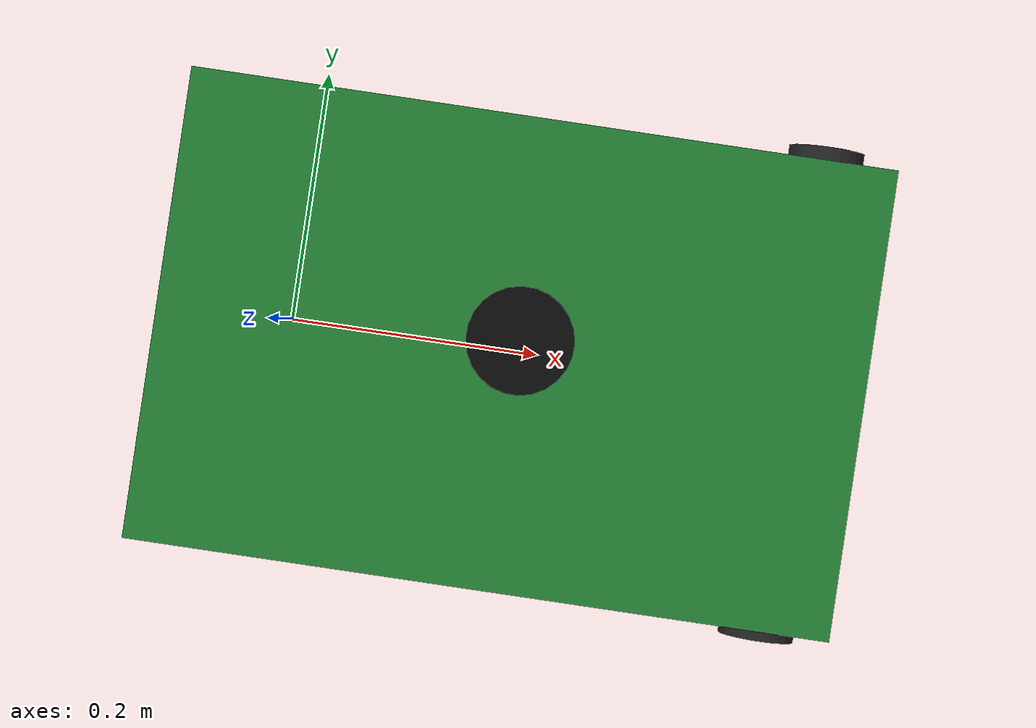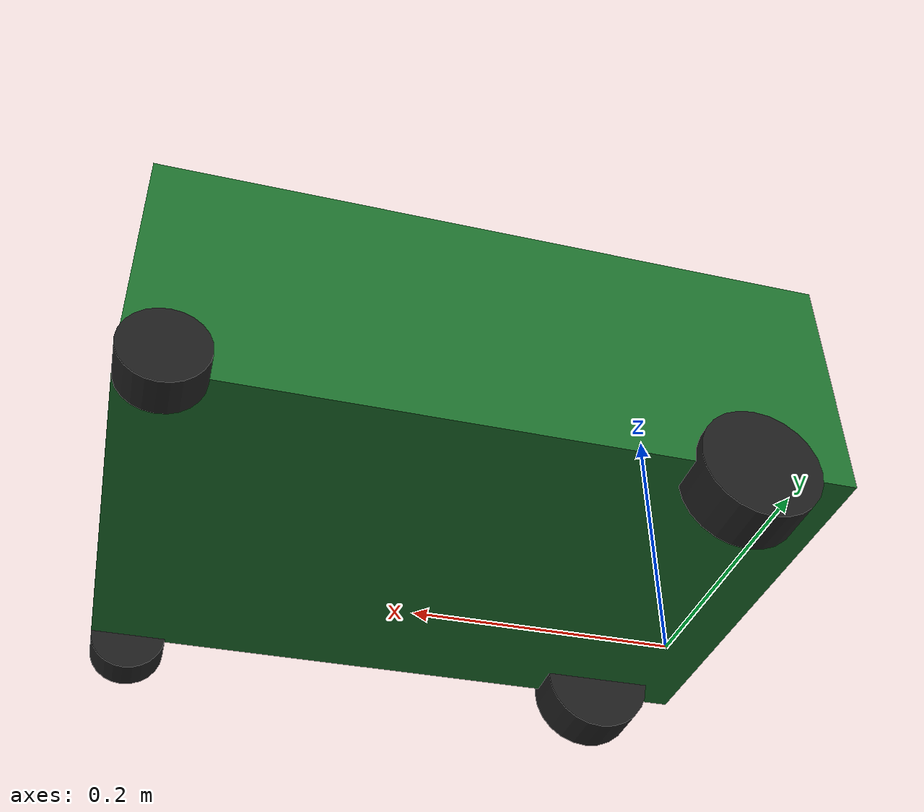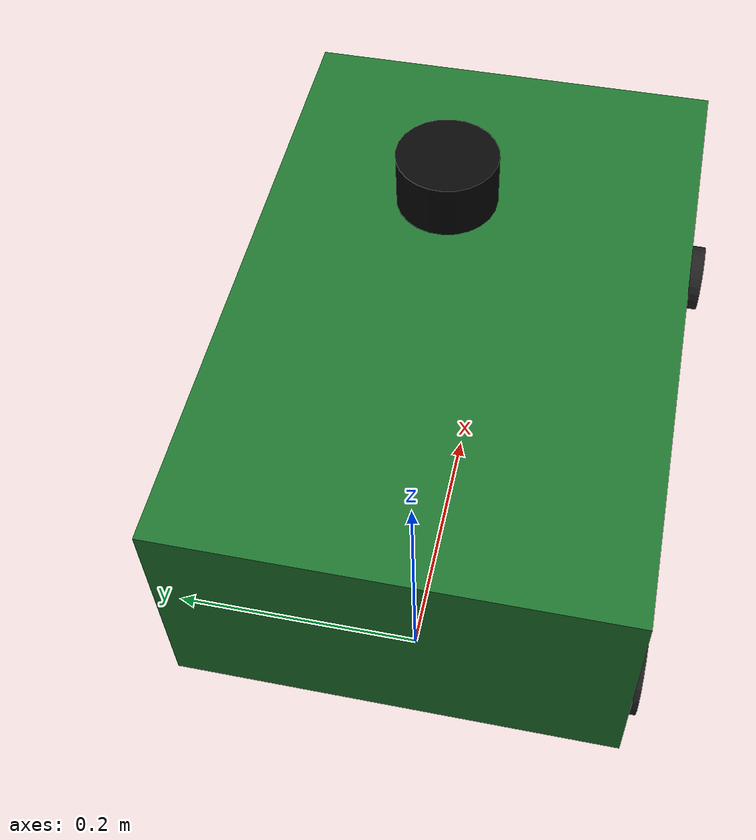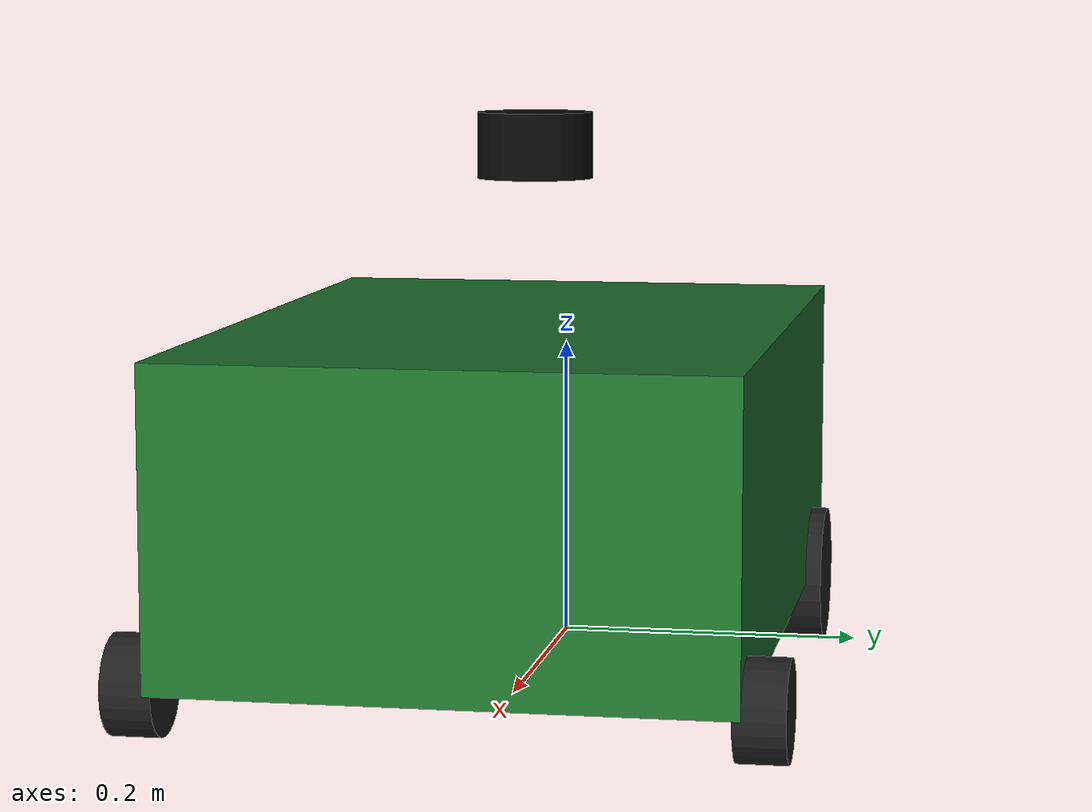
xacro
<?xml version="1.0"?>
<robot name="bagheera" xmlns:xacro="http://www.ros.org/wiki/xacro">
  <!-- REP-103: x forward, y left, z up. base_footprint lies on the floor. -->
  <xacro:arg name="chassis_length" default="0.51"/>
  <xacro:arg name="chassis_width" default="0.34"/>
  <xacro:arg name="chassis_height" default="0.19"/>
  <xacro:arg name="chassis_center_x" default="0.1784"/>
  <xacro:arg name="chassis_mass_kg" default="8.76"/>
  <xacro:arg name="wheel_radius" default="0.04475"/>
  <xacro:arg name="wheel_width" default="0.04"/>
  <xacro:arg name="wheel_track" default="0.32"/>
  <xacro:arg name="axle_x" default="0.0"/>
  <xacro:arg name="caster_radius" default="0.03"/>
  <xacro:arg name="caster_track" default="0.36"/>

  <xacro:arg name="imu_x" default="0.1834103944436625"/>
  <xacro:arg name="imu_y" default="0.011005001769871877"/>
  <xacro:arg name="imu_z" default="0.095"/>
  <xacro:arg name="imu_roll" default="0.0"/>
  <xacro:arg name="imu_pitch" default="0.0"/>
  <xacro:arg name="imu_yaw" default="0.0"/>
  <xacro:arg name="lidar_x" default="0.1834103944436625"/>
  <xacro:arg name="lidar_y" default="0.011005001769871877"/>
  <xacro:arg name="lidar_z" default="0.30"/>
  <xacro:arg name="lidar_yaw" default="-1.4678219024272308"/>
  <xacro:arg name="optical_flow_x" default="0.1834103944436625"/>
  <xacro:arg name="optical_flow_y" default="0.011005001769871877"/>
  <xacro:arg name="optical_flow_z" default="0.04525"/>
  <xacro:arg name="camera_x" default="0.33"/>
  <xacro:arg name="camera_y" default="0.0"/>
  <xacro:arg name="camera_z" default="0.12"/>
  <xacro:arg name="camera_roll" default="0.0"/>
  <xacro:arg name="camera_pitch" default="0.0"/>
  <xacro:arg name="camera_yaw" default="0.0"/>

  <xacro:property name="caster_x" value="${float($(arg chassis_center_x)) + float($(arg chassis_length))/2.0 - float($(arg caster_radius))}"/>

  <material name="bagheera_green"><color rgba="0.12 0.45 0.18 1.0"/></material>
  <material name="wheel_grey"><color rgba="0.12 0.12 0.12 1.0"/></material>
  <material name="sensor_black"><color rgba="0.03 0.03 0.03 1.0"/></material>

  <link name="base_footprint"/>
  <joint name="base_footprint_joint" type="fixed">
    <parent link="base_footprint"/>
    <child link="base_link"/>
    <origin xyz="0 0 $(arg wheel_radius)" rpy="0 0 0"/>
  </joint>

  <link name="base_link">
    <visual>
      <origin xyz="$(arg chassis_center_x) 0 ${float($(arg chassis_height))/2.0}"/>
      <geometry><box size="$(arg chassis_length) $(arg chassis_width) $(arg chassis_height)"/></geometry>
      <material name="bagheera_green"/>
    </visual>
    <collision>
      <origin xyz="$(arg chassis_center_x) 0 ${float($(arg chassis_height))/2.0}"/>
      <geometry><box size="$(arg chassis_length) $(arg chassis_width) $(arg chassis_height)"/></geometry>
    </collision>
    <inertial>
      <origin xyz="$(arg chassis_center_x) 0 ${float($(arg chassis_height))/2.0}"/>
      <mass value="$(arg chassis_mass_kg)"/>
      <inertia ixx="0.111" ixy="0" ixz="0" iyy="0.216" iyz="0" izz="0.274"/>
    </inertial>
  </link>

  <xacro:macro name="fixed_wheel" params="name parent x y radius width">
    <link name="${name}_link">
      <visual>
        <origin rpy="${pi/2} 0 0"/>
        <geometry><cylinder radius="${radius}" length="${width}"/></geometry>
        <material name="wheel_grey"/>
      </visual>
      <collision>
        <origin rpy="${pi/2} 0 0"/>
        <geometry><cylinder radius="${radius}" length="${width}"/></geometry>
      </collision>
    </link>
    <joint name="${name}_joint" type="fixed">
      <parent link="${parent}"/><child link="${name}_link"/>
      <origin xyz="${x} ${y} 0"/>
    </joint>
  </xacro:macro>

  <link name="base_axle"/>
  <joint name="base_axle_joint" type="fixed">
    <parent link="base_link"/><child link="base_axle"/>
    <origin xyz="$(arg axle_x) 0 0" rpy="0 0 0"/>
  </joint>

  <xacro:fixed_wheel name="left_wheel" parent="base_axle" x="0" y="${float($(arg wheel_track))/2.0}" radius="$(arg wheel_radius)" width="$(arg wheel_width)"/>
  <xacro:fixed_wheel name="right_wheel" parent="base_axle" x="0" y="${-float($(arg wheel_track))/2.0}" radius="$(arg wheel_radius)" width="$(arg wheel_width)"/>
  <xacro:fixed_wheel name="front_left_caster" parent="base_link" x="${caster_x}" y="${float($(arg caster_track))/2.0}" radius="$(arg caster_radius)" width="0.03"/>
  <xacro:fixed_wheel name="front_right_caster" parent="base_link" x="${caster_x}" y="${-float($(arg caster_track))/2.0}" radius="$(arg caster_radius)" width="0.03"/>

  <link name="imu_link"/>
  <joint name="imu_joint" type="fixed">
    <parent link="base_link"/><child link="imu_link"/>
    <origin xyz="$(arg imu_x) $(arg imu_y) $(arg imu_z)" rpy="$(arg imu_roll) $(arg imu_pitch) $(arg imu_yaw)"/>
  </joint>

  <link name="lidar_link">
    <visual><geometry><cylinder radius="0.036" length="0.041"/></geometry><material name="sensor_black"/></visual>
  </link>
  <joint name="lidar_joint" type="fixed">
    <parent link="base_link"/><child link="lidar_link"/>
    <origin xyz="$(arg lidar_x) $(arg lidar_y) $(arg lidar_z)" rpy="0 0 $(arg lidar_yaw)"/>
  </joint>

  <link name="pmw3901_sensor"/>
  <joint name="pmw3901_joint" type="fixed">
    <parent link="base_link"/><child link="pmw3901_sensor"/>
    <origin xyz="$(arg optical_flow_x) $(arg optical_flow_y) $(arg optical_flow_z)" rpy="0 0 0"/>
  </joint>

  <link name="camera_link">
    <visual><geometry><box size="0.025 0.025 0.012"/></geometry><material name="sensor_black"/></visual>
  </link>
  <joint name="camera_joint" type="fixed">
    <parent link="base_link"/><child link="camera_link"/>
    <origin xyz="$(arg camera_x) $(arg camera_y) $(arg camera_z)" rpy="$(arg camera_roll) $(arg camera_pitch) $(arg camera_yaw)"/>
  </joint>
  <!-- REP-103 optical frame: z forward, x right, y down. -->
  <link name="camera_optical_frame"/>
  <joint name="camera_optical_joint" type="fixed">
    <parent link="camera_link"/><child link="camera_optical_frame"/>
    <origin xyz="0 0 0" rpy="${-pi/2} 0 ${-pi/2}"/>
  </joint>
</robot>
